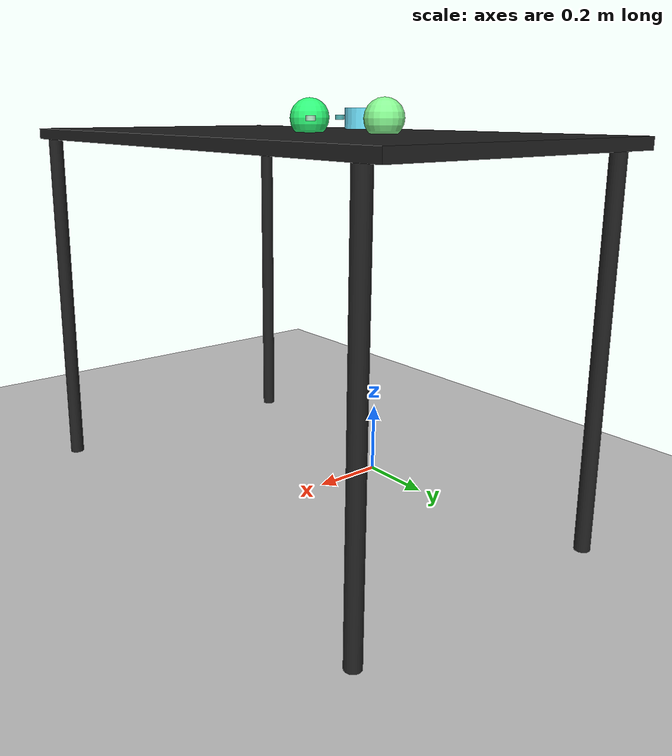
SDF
<?xml version="1.0" ?>
<sdf version="1.6">
  <world name="arm_world">
    <plugin filename="gz-sim-physics-system" name="gz::sim::systems::Physics">
      <engine>
        <filename>libgz-physics-bullet-featherstone-plugin.so</filename>
      </engine>
    </plugin>
    <plugin filename="gz-sim-user-commands-system" name="gz::sim::systems::UserCommands"/>
    <plugin filename="gz-sim-scene-broadcaster-system" name="gz::sim::systems::SceneBroadcaster"/>
    <plugin filename="gz-sim-sensors-system" name="gz::sim::systems::Sensors">
      <render_engine>ogre2</render_engine>
    </plugin>
    <gravity>0.0 0.0 -9.8</gravity>
    <scene>
      <shadows>false</shadows>
    </scene>
    <gui>
      <camera name="user_camera">
        <pose>0.75 -0.75 1.4 0 0.29 2.21</pose>
      </camera>
    </gui>
    <include>
      <uri>https://fuel.gazebosim.org/1.0/OpenRobotics/models/Sun</uri>
    </include>
    <model name="table">
      <static>true</static>
      <include>
        <uri>model://table</uri>
      </include>
      <pose>0.29 0 0 0 0 1.5708</pose>
    </model>
    <model name="ground_plane">
      <static>true</static>
      <link name="link">
        <collision name="collision">
          <geometry>
            <plane>
              <normal>0 0 1</normal>
            </plane>
          </geometry>
          <surface>
            <friction>
              <ode>
                <mu>1.0</mu>
                <mu2>1.0</mu2>
              </ode>
            </friction>
          </surface>
        </collision>
        <visual name="visual">
          <geometry>
            <plane>
              <normal>0 0 1</normal>
              <size>100 100</size>
            </plane>
          </geometry>
          <material>
            <ambient>0.8 0.8 0.8 1</ambient>
            <diffuse>0.8 0.8 0.8 1</diffuse>
            <specular>0.8 0.8 0.8 1</specular>
          </material>
        </visual>
      </link>
    </model>
    <model name="sphere_l_0">
      <pose>0.223 0.252 1.05 0 0 4.7</pose>
      <link name="sphere_l_0_link">
        <collision name="sphere_l_0_collision">
          <geometry>
            <sphere>
              <radius>0.05</radius>
            </sphere>
          </geometry>
        </collision>
        <visual name="sphere_l_0_visual">
          <geometry>
            <sphere>
              <radius>0.05</radius>
            </sphere>
          </geometry>
          <material>
            <ambient>0.53 0.98 0.57 1</ambient>
            <diffuse>0.53 0.98 0.57 1</diffuse>
          </material>
        </visual>
        <velocity_decay>
          <linear>1</linear>
          <angular>1</angular>
        </velocity_decay>
      </link>
    </model>
    <model name="cylinder_s_1">
      <pose>0.322 0.095 1.05 0 0 0.1</pose>
      <link name="cylinder_s_1_link">
        <collision name="cylinder_s_1_collision">
          <geometry>
            <cylinder>
              <radius>0.0125</radius>
              <length>0.0125</length>
            </cylinder>
          </geometry>
        </collision>
        <visual name="cylinder_s_1_visual">
          <geometry>
            <cylinder>
              <radius>0.0125</radius>
              <length>0.0125</length>
            </cylinder>
          </geometry>
          <material>
            <ambient>0.68 0.9 0.76 1</ambient>
            <diffuse>0.68 0.9 0.76 1</diffuse>
          </material>
        </visual>
        <velocity_decay>
          <linear>1</linear>
          <angular>1</angular>
        </velocity_decay>
      </link>
    </model>
    <model name="cylinder_s_2">
      <pose>0.134 -0.018 1.05 0 0 5.12</pose>
      <link name="cylinder_s_2_link">
        <collision name="cylinder_s_2_collision">
          <geometry>
            <cylinder>
              <radius>0.0125</radius>
              <length>0.0125</length>
            </cylinder>
          </geometry>
        </collision>
        <visual name="cylinder_s_2_visual">
          <geometry>
            <cylinder>
              <radius>0.0125</radius>
              <length>0.0125</length>
            </cylinder>
          </geometry>
          <material>
            <ambient>0.29 0.67 0.67 1</ambient>
            <diffuse>0.29 0.67 0.67 1</diffuse>
          </material>
        </visual>
        <velocity_decay>
          <linear>1</linear>
          <angular>1</angular>
        </velocity_decay>
      </link>
    </model>
    <model name="sphere_l_3">
      <pose>0.289 0.048 1.05 0 0 0.97</pose>
      <link name="sphere_l_3_link">
        <collision name="sphere_l_3_collision">
          <geometry>
            <sphere>
              <radius>0.05</radius>
            </sphere>
          </geometry>
        </collision>
        <visual name="sphere_l_3_visual">
          <geometry>
            <sphere>
              <radius>0.05</radius>
            </sphere>
          </geometry>
          <material>
            <ambient>0.18 0.99 0.47 1</ambient>
            <diffuse>0.18 0.99 0.47 1</diffuse>
          </material>
        </visual>
        <velocity_decay>
          <linear>1</linear>
          <angular>1</angular>
        </velocity_decay>
      </link>
    </model>
    <model name="cylinder_l_4">
      <pose>0.227 0.189 1.05 0 0 4.85</pose>
      <link name="cylinder_l_4_link">
        <collision name="cylinder_l_4_collision">
          <geometry>
            <cylinder>
              <radius>0.05</radius>
              <length>0.05</length>
            </cylinder>
          </geometry>
        </collision>
        <visual name="cylinder_l_4_visual">
          <geometry>
            <cylinder>
              <radius>0.05</radius>
              <length>0.05</length>
            </cylinder>
          </geometry>
          <material>
            <ambient>0.43 0.88 0.98 1</ambient>
            <diffuse>0.43 0.88 0.98 1</diffuse>
          </material>
        </visual>
        <velocity_decay>
          <linear>1</linear>
          <angular>1</angular>
        </velocity_decay>
      </link>
    </model>
  </world>
</sdf>

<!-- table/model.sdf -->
<sdf version="1.5">
  <model name="table">
    <static>true</static>
    <link name="link">
      <collision name="surface">
        <pose>0 0 1.0 0 0 0</pose>
        <geometry>
          <box>
            <size>1.5 0.8 0.03</size>
          </box>
        </geometry>
        <surface>
          <friction>
            <ode>
              <mu>0.6</mu>
              <mu2>0.6</mu2>
            </ode>
          </friction>
        </surface>
      </collision>
      <visual name="surface">
        <pose>0 0 1.0 0 0 0</pose>
        <geometry>
          <box>
            <size>1.5 0.8 0.03</size>
          </box>
        </geometry>
        <material>
          <script>
            <uri>file://media/materials/scripts/gazebo.material</uri>
            <name>Gazebo/Black</name>
          </script>
        </material>
      </visual>
      <collision name="front_left_leg">
        <pose>0.68 0.38 0.5 0 0 0</pose>
        <geometry>
          <cylinder>
            <radius>0.02</radius>
            <length>1.0</length>
          </cylinder>
        </geometry>
      </collision>
      <visual name="front_left_leg">
        <pose>0.68 0.38 0.5 0 0 0</pose>
        <geometry>
          <cylinder>
            <radius>0.02</radius>
            <length>1.0</length>
          </cylinder>
        </geometry>
        <material>
          <script>
            <uri>file://media/materials/scripts/gazebo.material</uri>
            <name>Gazebo/Black</name>
          </script>
        </material>
      </visual>
      <collision name="front_right_leg">
        <pose>0.68 -0.38 0.5 0 0 0</pose>
        <geometry>
          <cylinder>
            <radius>0.02</radius>
            <length>1.0</length>
          </cylinder>
        </geometry>
      </collision>
      <visual name="front_right_leg">
        <pose>0.68 -0.38 0.5 0 0 0</pose>
        <geometry>
          <cylinder>
            <radius>0.02</radius>
            <length>1.0</length>
          </cylinder>
        </geometry>
        <material>
          <script>
            <uri>file://media/materials/scripts/gazebo.material</uri>
            <name>Gazebo/Black</name>
          </script>
        </material>
      </visual>
      <collision name="back_right_leg">
        <pose>-0.68 -0.38 0.5 0 0 0</pose>
        <geometry>
          <cylinder>
            <radius>0.02</radius>
            <length>1.0</length>
          </cylinder>
        </geometry>
      </collision>
      <visual name="back_right_leg">
        <pose>-0.68 -0.38 0.5 0 0 0</pose>
        <geometry>
          <cylinder>
            <radius>0.02</radius>
            <length>1.0</length>
          </cylinder>
        </geometry>
        <material>
          <script>
            <uri>file://media/materials/scripts/gazebo.material</uri>
            <name>Gazebo/Black</name>
          </script>
        </material>
      </visual>
      <collision name="back_left_leg">
        <pose>-0.68 0.38 0.5 0 0 0</pose>
        <geometry>
          <cylinder>
            <radius>0.02</radius>
            <length>1.0</length>
          </cylinder>
        </geometry>
      </collision>
      <visual name="back_left_leg">
        <pose>-0.68 0.38 0.5 0 0 0</pose>
        <geometry>
          <cylinder>
            <radius>0.02</radius>
            <length>1.0</length>
          </cylinder>
        </geometry>
        <material>
          <script>
            <uri>file://media/materials/scripts/gazebo.material</uri>
            <name>Gazebo/Black</name>
          </script>
        </material>
      </visual>
    </link>
  </model>
</sdf>
